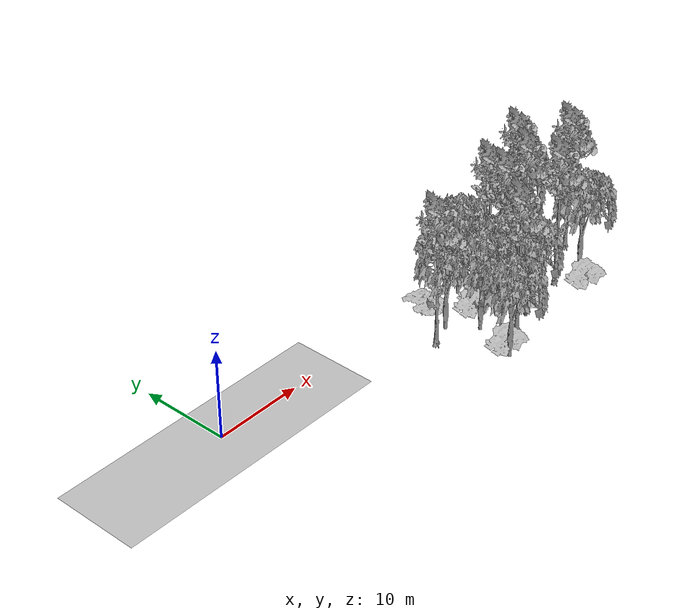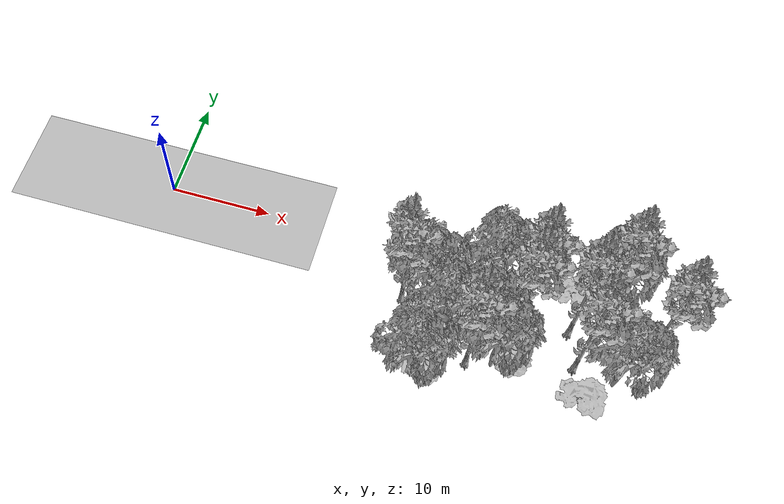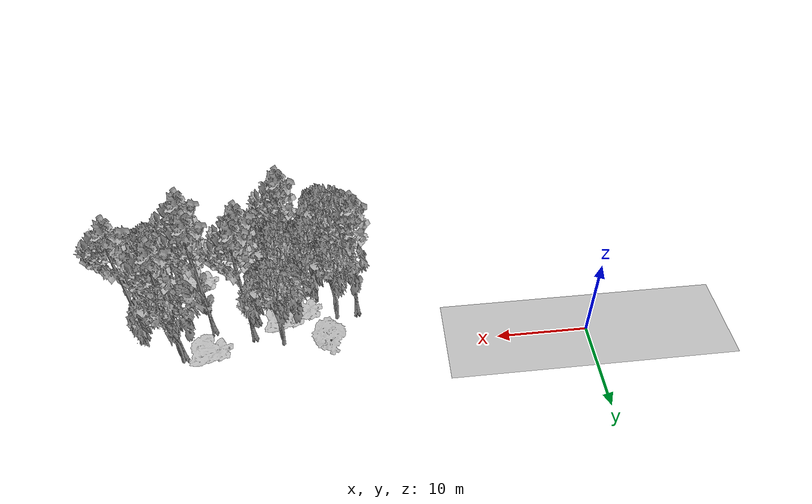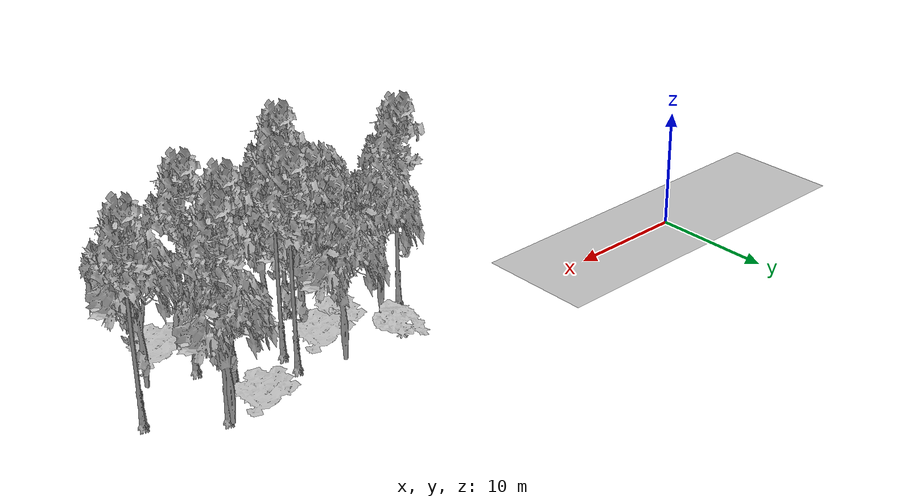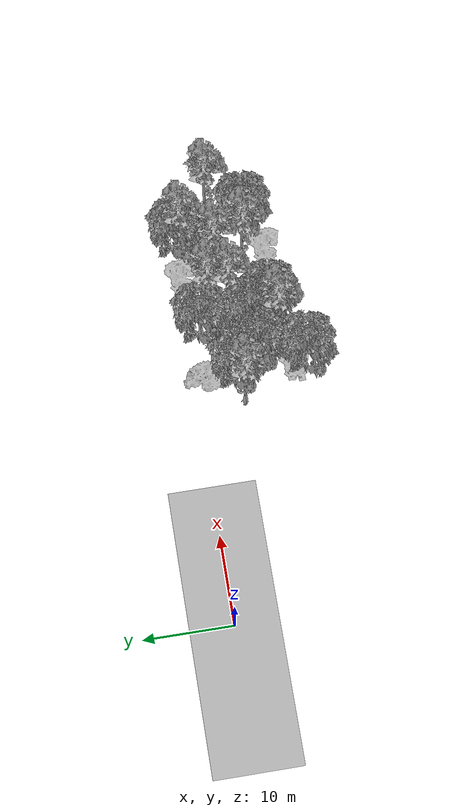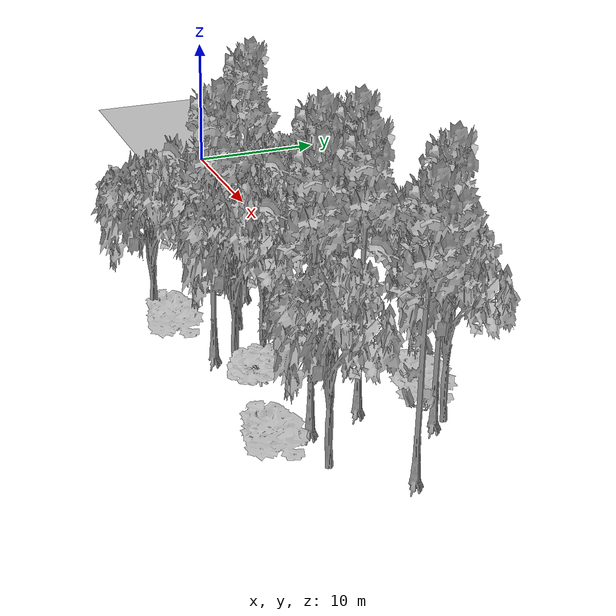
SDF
<sdf version="1.7">
 <world name="default">
  <model name="ground_plane">
   <static>1</static>
   <link name="link">
    <collision name="collision">
     <pose>-50 0 0 0 -0 0</pose>
     <geometry><plane><normal>0 0 1</normal><size>100 100</size></plane></geometry>
     <surface><contact><ode><min_depth>0.01</min_depth><max_vel>0</max_vel></ode></contact></surface>
    </collision>
    <visual name="grass">
     <cast_shadows>0</cast_shadows>
     <geometry>
      <mesh>
       <scale>0.5814285714285714 0.18142857142857144 0.1</scale>
       <uri>file://grass_plane/meshes/grass_plane.dae</uri>
      </mesh>
     </geometry>
    </visual>
   </link>
  </model>
  <model name="Tree 3">
   <static>1</static>
   <pose>34.5325173879184 -9.449591073487406 0 1.57079 -0 0</pose>
   <link name="link">
    <collision name="collision">
     <geometry><mesh><scale>3.5 5 3.5</scale><uri>model://tree_2/meshes/tree_2.obj</uri></mesh></geometry>
    </collision>
    <visual name="visual">
     <geometry><mesh><scale>3.5 5 3.5</scale><uri>model://tree_2/meshes/tree_2.obj</uri></mesh></geometry>
    </visual>
   </link>
  </model>
  <model name="Tree 15">
   <static>1</static>
   <pose>40.89080094411801 -4.3779563781776005 0 1.57079 -0 0</pose>
   <link name="link">
    <collision name="collision">
     <geometry><mesh><scale>3.5 5 3.5</scale><uri>model://tree_9/meshes/tree_9.obj</uri></mesh></geometry>
    </collision>
    <visual name="visual">
     <geometry><mesh><scale>3.5 5 3.5</scale><uri>model://tree_9/meshes/tree_9.obj</uri></mesh></geometry>
    </visual>
   </link>
  </model>
  <model name="Tree 25">
   <static>1</static>
   <pose>45.603729243816204 -8.233047635370838 0 1.57079 -0 0</pose>
   <link name="link">
    <collision name="collision">
     <geometry><mesh><scale>3.5 5 3.5</scale><uri>model://tree_2/meshes/tree_2.obj</uri></mesh></geometry>
    </collision>
    <visual name="visual">
     <geometry><mesh><scale>3.5 5 3.5</scale><uri>model://tree_2/meshes/tree_2.obj</uri></mesh></geometry>
    </visual>
   </link>
  </model>
  <model name="Tree 28">
   <static>1</static>
   <pose>40.806572974014315 -0.7334378901298848 0 1.57079 -0 0</pose>
   <link name="link">
    <collision name="collision">
     <geometry><mesh><scale>3 2 3</scale><uri>model://tree_3/meshes/tree_3.obj</uri></mesh></geometry>
    </collision>
    <visual name="visual">
     <geometry><mesh><scale>3 2 3</scale><uri>model://tree_3/meshes/tree_3.obj</uri></mesh></geometry>
    </visual>
   </link>
  </model>
  <model name="Tree 29">
   <static>1</static>
   <pose>33.10193095426334 -1.6030235810332467 0 1.57079 -0 0</pose>
   <link name="link">
    <collision name="collision">
     <geometry><mesh><scale>3.5 5 3.5</scale><uri>model://tree_2/meshes/tree_2.obj</uri></mesh></geometry>
    </collision>
    <visual name="visual">
     <geometry><mesh><scale>3.5 5 3.5</scale><uri>model://tree_2/meshes/tree_2.obj</uri></mesh></geometry>
    </visual>
   </link>
  </model>
  <model name="Tree 31">
   <static>1</static>
   <pose>27.868678222163325 -12.441518717868536 0 1.57079 -0 0</pose>
   <link name="link">
    <collision name="collision">
     <geometry><mesh><scale>3.5 5 3.5</scale><uri>model://tree_2/meshes/tree_2.obj</uri></mesh></geometry>
    </collision>
    <visual name="visual">
     <geometry><mesh><scale>3.5 5 3.5</scale><uri>model://tree_2/meshes/tree_2.obj</uri></mesh></geometry>
    </visual>
   </link>
  </model>
  <model name="Tree 32">
   <static>1</static>
   <pose>43.73445040980077 -1.0270735207104433 0 1.57079 -0 0</pose>
   <link name="link">
    <collision name="collision">
     <geometry><mesh><scale>3.5 5 3.5</scale><uri>model://tree_9/meshes/tree_9.obj</uri></mesh></geometry>
    </collision>
    <visual name="visual">
     <geometry><mesh><scale>3.5 5 3.5</scale><uri>model://tree_9/meshes/tree_9.obj</uri></mesh></geometry>
    </visual>
   </link>
  </model>
  <model name="Tree 35">
   <static>1</static>
   <pose>31.327881602145467 -5.282469505766191 0 1.57079 -0 0</pose>
   <link name="link">
    <collision name="collision">
     <geometry><mesh><scale>3 2 3</scale><uri>model://tree_3/meshes/tree_3.obj</uri></mesh></geometry>
    </collision>
    <visual name="visual">
     <geometry><mesh><scale>3 2 3</scale><uri>model://tree_3/meshes/tree_3.obj</uri></mesh></geometry>
    </visual>
   </link>
  </model>
  <model name="Tree 61">
   <static>1</static>
   <pose>28.35429206965371 -11.7531429107192 0 1.57079 -0 0</pose>
   <link name="link">
    <collision name="collision">
     <geometry><mesh><scale>3 2 3</scale><uri>model://tree_3/meshes/tree_3.obj</uri></mesh></geometry>
    </collision>
    <visual name="visual">
     <geometry><mesh><scale>3 2 3</scale><uri>model://tree_3/meshes/tree_3.obj</uri></mesh></geometry>
    </visual>
   </link>
  </model>
  <model name="Tree 75">
   <static>1</static>
   <pose>33.09020216528792 -4.436038816571232 0 1.57079 -0 0</pose>
   <link name="link">
    <collision name="collision">
     <geometry><mesh><scale>3 2 3</scale><uri>model://tree_3/meshes/tree_3.obj</uri></mesh></geometry>
    </collision>
    <visual name="visual">
     <geometry><mesh><scale>3 2 3</scale><uri>model://tree_3/meshes/tree_3.obj</uri></mesh></geometry>
    </visual>
   </link>
  </model>
  <model name="Tree 85">
   <static>1</static>
   <pose>29.510137470684953 -7.416124864204309 0 1.57079 -0 0</pose>
   <link name="link">
    <collision name="collision">
     <geometry><mesh><scale>3.5 5 3.5</scale><uri>model://tree_2/meshes/tree_2.obj</uri></mesh></geometry>
    </collision>
    <visual name="visual">
     <geometry><mesh><scale>3.5 5 3.5</scale><uri>model://tree_2/meshes/tree_2.obj</uri></mesh></geometry>
    </visual>
   </link>
  </model>
  <model name="Tree 87">
   <static>1</static>
   <pose>27.25706211272791 -4.697887135978316 0 1.57079 -0 0</pose>
   <link name="link">
    <collision name="collision">
     <geometry><mesh><scale>3.5 5 3.5</scale><uri>model://tree_2/meshes/tree_2.obj</uri></mesh></geometry>
    </collision>
    <visual name="visual">
     <geometry><mesh><scale>3.5 5 3.5</scale><uri>model://tree_2/meshes/tree_2.obj</uri></mesh></geometry>
    </visual>
   </link>
  </model>
  <model name="Tree 93">
   <static>1</static>
   <pose>32.88833185172285 -7.067043780941843 0 1.57079 -0 0</pose>
   <link name="link">
    <collision name="collision">
     <geometry><mesh><scale>3.5 5 3.5</scale><uri>model://tree_2/meshes/tree_2.obj</uri></mesh></geometry>
    </collision>
    <visual name="visual">
     <geometry><mesh><scale>3.5 5 3.5</scale><uri>model://tree_2/meshes/tree_2.obj</uri></mesh></geometry>
    </visual>
   </link>
  </model>
  <model name="Tree 112">
   <static>1</static>
   <pose>32.334620738133765 -10.005828493906908 0 1.57079 -0 0</pose>
   <link name="link">
    <collision name="collision">
     <geometry><mesh><scale>3.5 5 3.5</scale><uri>model://tree_9/meshes/tree_9.obj</uri></mesh></geometry>
    </collision>
    <visual name="visual">
     <geometry><mesh><scale>3.5 5 3.5</scale><uri>model://tree_9/meshes/tree_9.obj</uri></mesh></geometry>
    </visual>
   </link>
  </model>
  <model name="Tree 133">
   <static>1</static>
   <pose>36.442003773116554 -3.0153537420710705 0 1.57079 -0 0</pose>
   <link name="link">
    <collision name="collision">
     <geometry><mesh><scale>3.5 5 3.5</scale><uri>model://tree_9/meshes/tree_9.obj</uri></mesh></geometry>
    </collision>
    <visual name="visual">
     <geometry><mesh><scale>3.5 5 3.5</scale><uri>model://tree_9/meshes/tree_9.obj</uri></mesh></geometry>
    </visual>
   </link>
  </model>
  <model name="Tree 137">
   <static>1</static>
   <pose>28.078152100906095 -1.3243994681459785 0 1.57079 -0 0</pose>
   <link name="link">
    <collision name="collision">
     <geometry><mesh><scale>4 2.5 4</scale><uri>model://tree_1/meshes/tree_1.obj</uri></mesh></geometry>
    </collision>
    <visual name="visual">
     <geometry><mesh><scale>4 2.5 4</scale><uri>model://tree_1/meshes/tree_1.obj</uri></mesh></geometry>
    </visual>
   </link>
  </model>
  <model name="Tree 139">
   <static>1</static>
   <pose>36.16025743089476 -5.178064512777485 0 1.57079 -0 0</pose>
   <link name="link">
    <collision name="collision">
     <geometry><mesh><scale>3.5 5 3.5</scale><uri>model://tree_9/meshes/tree_9.obj</uri></mesh></geometry>
    </collision>
    <visual name="visual">
     <geometry><mesh><scale>3.5 5 3.5</scale><uri>model://tree_9/meshes/tree_9.obj</uri></mesh></geometry>
    </visual>
   </link>
  </model>
  <model name="Tree 141">
   <static>1</static>
   <pose>43.13491433978871 -10.805848444583102 0 1.57079 -0 0</pose>
   <link name="link">
    <collision name="collision">
     <geometry><mesh><scale>3 2 3</scale><uri>model://tree_3/meshes/tree_3.obj</uri></mesh></geometry>
    </collision>
    <visual name="visual">
     <geometry><mesh><scale>3 2 3</scale><uri>model://tree_3/meshes/tree_3.obj</uri></mesh></geometry>
    </visual>
   </link>
  </model>
  <model name="Tree 143">
   <static>1</static>
   <pose>25.07200462807245 -5.357328529659757 0 1.57079 -0 0</pose>
   <link name="link">
    <collision name="collision">
     <geometry><mesh><scale>3.5 5 3.5</scale><uri>model://tree_9/meshes/tree_9.obj</uri></mesh></geometry>
    </collision>
    <visual name="visual">
     <geometry><mesh><scale>3.5 5 3.5</scale><uri>model://tree_9/meshes/tree_9.obj</uri></mesh></geometry>
    </visual>
   </link>
  </model>
  <model name="Tree 152">
   <static>1</static>
   <pose>36.11666581467797 -8.419893001157384 0 1.57079 -0 0</pose>
   <link name="link">
    <collision name="collision">
     <geometry><mesh><scale>4 2.5 4</scale><uri>model://tree_1/meshes/tree_1.obj</uri></mesh></geometry>
    </collision>
    <visual name="visual">
     <geometry><mesh><scale>4 2.5 4</scale><uri>model://tree_1/meshes/tree_1.obj</uri></mesh></geometry>
    </visual>
   </link>
  </model>
  <model name="Tree 153">
   <static>1</static>
   <pose>48.320861878738896 -4.469496491670254 0 1.57079 -0 0</pose>
   <link name="link">
    <collision name="collision">
     <geometry><mesh><scale>3.5 5 3.5</scale><uri>model://tree_9/meshes/tree_9.obj</uri></mesh></geometry>
    </collision>
    <visual name="visual">
     <geometry><mesh><scale>3.5 5 3.5</scale><uri>model://tree_9/meshes/tree_9.obj</uri></mesh></geometry>
    </visual>
   </link>
  </model>
  <model name="Tree 154">
   <static>1</static>
   <pose>43.66952844625257 -0.44275036116439814 0 1.57079 -0 0</pose>
   <link name="link">
    <collision name="collision">
     <geometry><mesh><scale>3.5 5 3.5</scale><uri>model://tree_2/meshes/tree_2.obj</uri></mesh></geometry>
    </collision>
    <visual name="visual">
     <geometry><mesh><scale>3.5 5 3.5</scale><uri>model://tree_2/meshes/tree_2.obj</uri></mesh></geometry>
    </visual>
   </link>
  </model>
  <model name="Tree 157">
   <static>1</static>
   <pose>41.973901556082296 -7.730375558033077 0 1.57079 -0 0</pose>
   <link name="link">
    <collision name="collision">
     <geometry><mesh><scale>3.5 5 3.5</scale><uri>model://tree_9/meshes/tree_9.obj</uri></mesh></geometry>
    </collision>
    <visual name="visual">
     <geometry><mesh><scale>3.5 5 3.5</scale><uri>model://tree_9/meshes/tree_9.obj</uri></mesh></geometry>
    </visual>
   </link>
  </model>
 </world>
</sdf>
